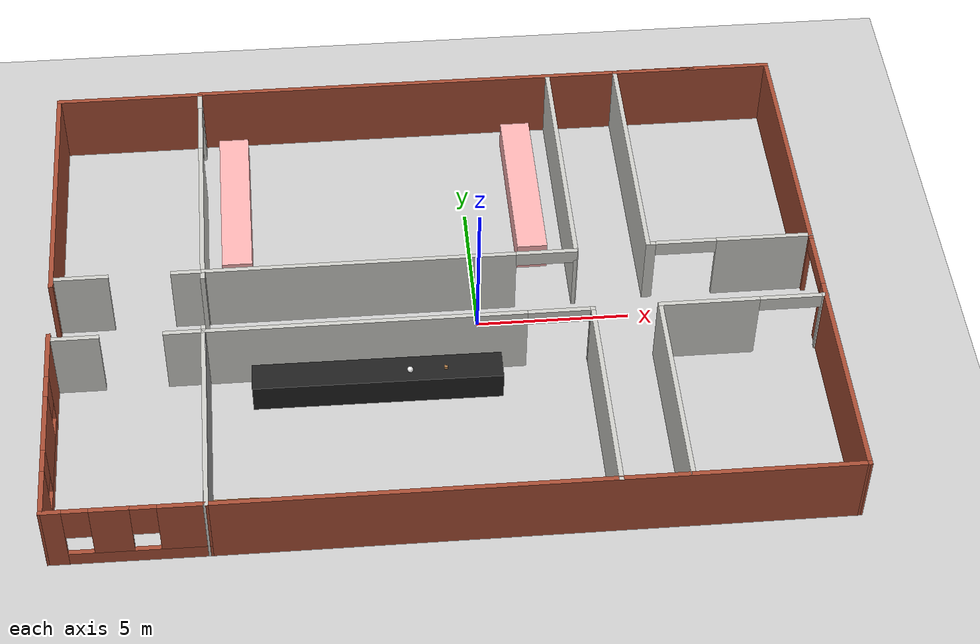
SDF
<sdf version="1.6">
 <world name="default">
  <light name="sun" type="directional">
   <pose>0 0 10 0 -0 0</pose>
   <diffuse>0.8 0.8 0.8 1</diffuse>
   <specular>0.1 0.1 0.1 1</specular>
   <attenuation>
    <range>1000</range>
    <constant>0.9</constant>
    <linear>0.01</linear>
    <quadratic>0.001</quadratic>
   </attenuation>
   <direction>-0.5 0.5 -1</direction>
  </light>
  <model name="ground_plane">
   <static>1</static>
   <link name="link">
    <collision name="collision">
     <geometry><plane><normal>0 0 1</normal><size>100 100</size></plane></geometry>
     <surface><friction><ode><mu>100</mu><mu2>50</mu2></ode></friction></surface>
    </collision>
    <visual name="visual">
     <cast_shadows>0</cast_shadows>
     <geometry><plane><normal>0 0 1</normal><size>100 100</size></plane></geometry>
     <material>
      <script><uri>file://media/materials/scripts/gazebo.material</uri><name>Gazebo/Grey</name></script>
     </material>
    </visual>
   </link>
  </model>
  <gravity>0 0 -9.8</gravity>
  <magnetic_field>6e-06 2.3e-05 -4.2e-05</magnetic_field>
  <atmosphere type="adiabatic"/>
  <physics name="default_physics" default="0" type="ode">
   <max_step_size>0.001</max_step_size>
   <real_time_factor>1</real_time_factor>
   <real_time_update_rate>1000</real_time_update_rate>
  </physics>
  <scene><ambient>0.4 0.4 0.4 1</ambient><background>0.7 0.7 0.7 1</background><shadows>1</shadows></scene>
  <spherical_coordinates>
   <surface_model>EARTH_WGS84</surface_model>
   <latitude_deg>0</latitude_deg>
   <longitude_deg>0</longitude_deg>
   <elevation>0</elevation>
   <heading_deg>0</heading_deg>
  </spherical_coordinates>
  <model name="biofacilty">
   <pose>-1.36381 0.274042 0 0 -0 0</pose>
   <link name="Wall_20">
    <collision name="Wall_20_Collision">
     <geometry><box><size>20 0.15 2.5</size></box></geometry>
     <pose>0 0 1.25 0 -0 0</pose>
    </collision>
    <visual name="Wall_20_Visual">
     <pose>0 0 1.25 0 -0 0</pose>
     <geometry><box><size>20 0.15 2.5</size></box></geometry>
     <material>
      <script><uri>file://media/materials/scripts/gazebo.material</uri><name>Gazebo/Bricks</name></script>
      <ambient>0.996078 0.47451 0.0196078 1</ambient>
     </material>
    </visual>
    <pose>2.42364 -8.95329 0 0 -0 0</pose>
   </link>
   <link name="Wall_22">
    <pose>12.3428 -0.015093 0 0 -0 1.57145</pose>
    <visual name="Wall_22_Visual_0">
     <pose>-5.29439 0 1.25 0 -0 0</pose>
     <geometry><box><size>7.43762 0.15 2.5</size></box></geometry>
     <material>
      <script><uri>file://media/materials/scripts/gazebo.material</uri><name>Gazebo/Bricks</name></script>
      <ambient>0.996078 0.47451 0.0196078 1</ambient>
     </material>
    </visual>
    <collision name="Wall_22_Collision_0">
     <geometry><box><size>7.43762 0.15 2.5</size></box></geometry>
     <pose>-5.29439 0 1.25 0 -0 0</pose>
    </collision>
    <visual name="Wall_22_Visual_1">
     <pose>4.71881 0 1.25 0 -0 0</pose>
     <geometry><box><size>8.58878 0.15 2.5</size></box></geometry>
     <material>
      <script><uri>file://media/materials/scripts/gazebo.material</uri><name>Gazebo/Bricks</name></script>
      <ambient>0.996078 0.47451 0.0196078 1</ambient>
     </material>
    </visual>
    <collision name="Wall_22_Collision_1">
     <geometry><box><size>8.58878 0.15 2.5</size></box></geometry>
     <pose>4.71881 0 1.25 0 -0 0</pose>
    </collision>
    <visual name="Wall_22_Visual_2">
     <pose>-0.575579 0 2.25 0 -0 0</pose>
     <geometry><box><size>2 0.15 0.5</size></box></geometry>
     <material>
      <script><uri>file://media/materials/scripts/gazebo.material</uri><name>Gazebo/Bricks</name></script>
      <ambient>0.996078 0.47451 0.0196078 1</ambient>
     </material>
    </visual>
    <collision name="Wall_22_Collision_2">
     <geometry><box><size>2 0.15 0.5</size></box></geometry>
     <pose>-0.575579 0 2.25 0 -0 0</pose>
    </collision>
   </link>
   <link name="Wall_23">
    <collision name="Wall_23_Collision">
     <geometry><box><size>20 0.15 2.5</size></box></geometry>
     <pose>0 0 1.25 0 -0 0</pose>
    </collision>
    <visual name="Wall_23_Visual">
     <pose>0 0 1.25 0 -0 0</pose>
     <geometry><box><size>20 0.15 2.5</size></box></geometry>
     <material>
      <script><uri>file://media/materials/scripts/gazebo.material</uri><name>Gazebo/Bricks</name></script>
      <ambient>0.996078 0.47451 0.0196078 1</ambient>
     </material>
    </visual>
    <pose>2.41196 8.9537 0 0 -0 3.14159</pose>
   </link>
   <link name="Wall_24">
    <pose>-7.5072 -0.015093 0 0 0 -1.57014</pose>
    <visual name="Wall_24_Visual_0">
     <pose>-8.63481 0 1.25 0 -0 0</pose>
     <geometry><box><size>0.756778 0.15 2.5</size></box></geometry>
     <material>
      <script><uri>file://media/materials/scripts/gazebo.material</uri><name>Gazebo/CeilingTiled</name></script>
      <ambient>1 1 1 1</ambient>
     </material>
    </visual>
    <collision name="Wall_24_Collision_0">
     <geometry><box><size>0.756778 0.15 2.5</size></box></geometry>
     <pose>-8.63481 0 1.25 0 -0 0</pose>
    </collision>
    <visual name="Wall_24_Visual_1">
     <pose>-3.21111 0 1.25 0 -0 0</pose>
     <geometry><box><size>6.09062 0.15 2.5</size></box></geometry>
     <material>
      <script><uri>file://media/materials/scripts/gazebo.material</uri><name>Gazebo/CeilingTiled</name></script>
      <ambient>1 1 1 1</ambient>
     </material>
    </visual>
    <collision name="Wall_24_Collision_1">
     <geometry><box><size>6.09062 0.15 2.5</size></box></geometry>
     <pose>-3.21111 0 1.25 0 -0 0</pose>
    </collision>
    <visual name="Wall_24_Visual_2">
     <pose>5.4237 0 1.25 0 -0 0</pose>
     <geometry><box><size>7.179 0.15 2.5</size></box></geometry>
     <material>
      <script><uri>file://media/materials/scripts/gazebo.material</uri><name>Gazebo/CeilingTiled</name></script>
      <ambient>1 1 1 1</ambient>
     </material>
    </visual>
    <collision name="Wall_24_Collision_2">
     <geometry><box><size>7.179 0.15 2.5</size></box></geometry>
     <pose>5.4237 0 1.25 0 -0 0</pose>
    </collision>
    <visual name="Wall_24_Visual_3">
     <pose>-7.25642 0 2.25 0 -0 0</pose>
     <geometry><box><size>2 0.15 0.5</size></box></geometry>
     <material>
      <script><uri>file://media/materials/scripts/gazebo.material</uri><name>Gazebo/CeilingTiled</name></script>
      <ambient>1 1 1 1</ambient>
     </material>
    </visual>
    <collision name="Wall_24_Collision_3">
     <geometry><box><size>2 0.15 0.5</size></box></geometry>
     <pose>-7.25642 0 2.25 0 -0 0</pose>
    </collision>
   </link>
   <link name="Wall_26">
    <collision name="Wall_26_Collision">
     <geometry><box><size>7 0.15 2.5</size></box></geometry>
     <pose>0 0 1.25 0 -0 0</pose>
    </collision>
    <visual name="Wall_26_Visual">
     <pose>0 0 1.25 0 -0 0</pose>
     <geometry><box><size>7 0.15 2.5</size></box></geometry>
     <material>
      <script><uri>file://media/materials/scripts/gazebo.material</uri><name>Gazebo/Grey</name></script>
      <ambient>1 1 1 1</ambient>
     </material>
    </visual>
    <pose>-7.50136 -5.52829 0 0 -0 1.5708</pose>
   </link>
   <link name="Wall_27">
    <pose>-1.32636 -2.10329 0 0 -0 0</pose>
    <visual name="Wall_27_Visual_0">
     <pose>-1.07933 0 1.25 0 -0 0</pose>
     <geometry><box><size>10.3413 0.15 2.5</size></box></geometry>
     <material>
      <script><uri>file://media/materials/scripts/gazebo.material</uri><name>Gazebo/CeilingTiled</name></script>
      <ambient>1 1 1 1</ambient>
     </material>
    </visual>
    <collision name="Wall_27_Collision_0">
     <geometry><box><size>10.3413 0.15 2.5</size></box></geometry>
     <pose>-1.07933 0 1.25 0 -0 0</pose>
    </collision>
    <visual name="Wall_27_Visual_1">
     <pose>6.17067 0 1.25 0 -0 0</pose>
     <geometry><box><size>0.158662 0.15 2.5</size></box></geometry>
     <material>
      <script><uri>file://media/materials/scripts/gazebo.material</uri><name>Gazebo/CeilingTiled</name></script>
      <ambient>1 1 1 1</ambient>
     </material>
    </visual>
    <collision name="Wall_27_Collision_1">
     <geometry><box><size>0.158662 0.15 2.5</size></box></geometry>
     <pose>6.17067 0 1.25 0 -0 0</pose>
    </collision>
    <visual name="Wall_27_Visual_2">
     <pose>5.09134 0 2.25 0 -0 0</pose>
     <geometry><box><size>2 0.15 0.5</size></box></geometry>
     <material>
      <script><uri>file://media/materials/scripts/gazebo.material</uri><name>Gazebo/CeilingTiled</name></script>
      <ambient>1 1 1 1</ambient>
     </material>
    </visual>
    <collision name="Wall_27_Collision_2">
     <geometry><box><size>2 0.15 0.5</size></box></geometry>
     <pose>5.09134 0 2.25 0 -0 0</pose>
    </collision>
   </link>
   <link name="Wall_28">
    <collision name="Wall_28_Collision">
     <geometry><box><size>7 0.15 2.5</size></box></geometry>
     <pose>0 0 1.25 0 -0 0</pose>
    </collision>
    <visual name="Wall_28_Visual">
     <pose>0 0 1.25 0 -0 0</pose>
     <geometry><box><size>7 0.15 2.5</size></box></geometry>
     <material>
      <script><uri>file://media/materials/scripts/gazebo.material</uri><name>Gazebo/CeilingTiled</name></script>
      <ambient>1 1 1 1</ambient>
     </material>
    </visual>
    <pose>4.84864 -5.52829 0 0 0 -1.5708</pose>
   </link>
   <link name="Wall_30">
    <collision name="Wall_30_Collision">
     <geometry><box><size>7 0.15 2.5</size></box></geometry>
     <pose>0 0 1.25 0 -0 0</pose>
    </collision>
    <visual name="Wall_30_Visual">
     <pose>0 0 1.25 0 -0 0</pose>
     <geometry><box><size>7 0.15 2.5</size></box></geometry>
     <material>
      <script><uri>file://media/materials/scripts/gazebo.material</uri><name>Gazebo/CeilingTiled</name></script>
      <ambient>1 1 1 1</ambient>
     </material>
    </visual>
    <pose>7.01344 -5.50786 0 0 -0 1.5708</pose>
   </link>
   <link name="Wall_31">
    <pose>9.68844 -2.08286 0 0 -0 0</pose>
    <visual name="Wall_31_Visual_0">
     <pose>-1.11288 0 1.25 0 -0 0</pose>
     <geometry><box><size>3.27424 0.15 2.5</size></box></geometry>
     <material>
      <script><uri>file://media/materials/scripts/gazebo.material</uri><name>Gazebo/CeilingTiled</name></script>
      <ambient>1 1 1 1</ambient>
     </material>
    </visual>
    <collision name="Wall_31_Collision_0">
     <geometry><box><size>3.27424 0.15 2.5</size></box></geometry>
     <pose>-1.11288 0 1.25 0 -0 0</pose>
    </collision>
    <visual name="Wall_31_Visual_1">
     <pose>2.63712 0 1.25 0 -0 0</pose>
     <geometry><box><size>0.225759 0.15 2.5</size></box></geometry>
     <material>
      <script><uri>file://media/materials/scripts/gazebo.material</uri><name>Gazebo/CeilingTiled</name></script>
      <ambient>1 1 1 1</ambient>
     </material>
    </visual>
    <collision name="Wall_31_Collision_1">
     <geometry><box><size>0.225759 0.15 2.5</size></box></geometry>
     <pose>2.63712 0 1.25 0 -0 0</pose>
    </collision>
    <visual name="Wall_31_Visual_2">
     <pose>1.52424 0 2.25 0 -0 0</pose>
     <geometry><box><size>2 0.15 0.5</size></box></geometry>
     <material>
      <script><uri>file://media/materials/scripts/gazebo.material</uri><name>Gazebo/CeilingTiled</name></script>
      <ambient>1 1 1 1</ambient>
     </material>
    </visual>
    <collision name="Wall_31_Collision_2">
     <geometry><box><size>2 0.15 0.5</size></box></geometry>
     <pose>1.52424 0 2.25 0 -0 0</pose>
    </collision>
   </link>
   <link name="Wall_44">
    <pose>-1.43833 0.481519 0 0 -0 0</pose>
    <visual name="Wall_44_Visual_0">
     <pose>-1.01405 0 1.25 0 -0 0</pose>
     <geometry><box><size>10.2219 0.15 2.5</size></box></geometry>
     <material>
      <script><uri>file://media/materials/scripts/gazebo.material</uri><name>Gazebo/CeilingTiled</name></script>
      <ambient>1 1 1 1</ambient>
     </material>
    </visual>
    <collision name="Wall_44_Collision_0">
     <geometry><box><size>10.2219 0.15 2.5</size></box></geometry>
     <pose>-1.01405 0 1.25 0 -0 0</pose>
    </collision>
    <visual name="Wall_44_Visual_1">
     <pose>6.11095 0 1.25 0 -0 0</pose>
     <geometry><box><size>0.028092 0.15 2.5</size></box></geometry>
     <material>
      <script><uri>file://media/materials/scripts/gazebo.material</uri><name>Gazebo/CeilingTiled</name></script>
      <ambient>1 1 1 1</ambient>
     </material>
    </visual>
    <collision name="Wall_44_Collision_1">
     <geometry><box><size>0.028092 0.15 2.5</size></box></geometry>
     <pose>6.11095 0 1.25 0 -0 0</pose>
    </collision>
    <visual name="Wall_44_Visual_2">
     <pose>5.09691 0 2.25 0 -0 0</pose>
     <geometry><box><size>2 0.15 0.5</size></box></geometry>
     <material>
      <script><uri>file://media/materials/scripts/gazebo.material</uri><name>Gazebo/CeilingTiled</name></script>
      <ambient>1 1 1 1</ambient>
     </material>
    </visual>
    <collision name="Wall_44_Collision_2">
     <geometry><box><size>2 0.15 0.5</size></box></geometry>
     <pose>5.09691 0 2.25 0 -0 0</pose>
    </collision>
   </link>
   <link name="Wall_45">
    <collision name="Wall_45_Collision">
     <geometry><box><size>8.5 0.15 2.5</size></box></geometry>
     <pose>0 0 1.25 0 -0 0</pose>
    </collision>
    <visual name="Wall_45_Visual">
     <pose>0 0 1.25 0 -0 0</pose>
     <geometry><box><size>8.5 0.15 2.5</size></box></geometry>
     <material>
      <script><uri>file://media/materials/scripts/gazebo.material</uri><name>Gazebo/CeilingTiled</name></script>
      <ambient>1 1 1 1</ambient>
     </material>
    </visual>
    <pose>4.61167 4.65652 0 0 -0 1.5708</pose>
   </link>
   <link name="Wall_47">
    <collision name="Wall_47_Collision">
     <geometry><box><size>5.5 0.15 2.5</size></box></geometry>
     <pose>0 0 1.25 0 -0 0</pose>
    </collision>
    <visual name="Wall_47_Visual">
     <pose>0 0 1.25 0 -0 0</pose>
     <geometry><box><size>5.5 0.15 2.5</size></box></geometry>
     <material>
      <script><uri>file://media/materials/scripts/gazebo.material</uri><name>Gazebo/Bricks</name></script>
      <ambient>0.996078 0.47451 0.0196078 1</ambient>
     </material>
    </visual>
    <pose>9.66196 8.9537 0 0 -0 3.14159</pose>
   </link>
   <link name="Wall_48">
    <collision name="Wall_48_Collision">
     <geometry><box><size>8.5 0.15 2.5</size></box></geometry>
     <pose>0 0 1.25 0 -0 0</pose>
    </collision>
    <visual name="Wall_48_Visual">
     <pose>0 0 1.25 0 -0 0</pose>
     <geometry><box><size>8.5 0.15 2.5</size></box></geometry>
     <material>
      <script><uri>file://media/materials/scripts/gazebo.material</uri><name>Gazebo/CeilingTiled</name></script>
      <ambient>1 1 1 1</ambient>
     </material>
    </visual>
    <pose>6.98696 4.7787 0 0 0 -1.5708</pose>
   </link>
   <link name="Wall_49">
    <pose>9.66196 0.603697 0 0 -0 0</pose>
    <visual name="Wall_49_Visual_0">
     <pose>-2.58581 0 1.25 0 -0 0</pose>
     <geometry><box><size>0.328391 0.15 2.5</size></box></geometry>
     <material>
      <script><uri>file://media/materials/scripts/gazebo.material</uri><name>Gazebo/CeilingTiled</name></script>
      <ambient>1 1 1 1</ambient>
     </material>
    </visual>
    <collision name="Wall_49_Collision_0">
     <geometry><box><size>0.328391 0.15 2.5</size></box></geometry>
     <pose>-2.58581 0 1.25 0 -0 0</pose>
    </collision>
    <visual name="Wall_49_Visual_1">
     <pose>1.1642 0 1.25 0 -0 0</pose>
     <geometry><box><size>3.17161 0.15 2.5</size></box></geometry>
     <material>
      <script><uri>file://media/materials/scripts/gazebo.material</uri><name>Gazebo/CeilingTiled</name></script>
      <ambient>1 1 1 1</ambient>
     </material>
    </visual>
    <collision name="Wall_49_Collision_1">
     <geometry><box><size>3.17161 0.15 2.5</size></box></geometry>
     <pose>1.1642 0 1.25 0 -0 0</pose>
    </collision>
    <visual name="Wall_49_Visual_2">
     <pose>-1.42161 0 2.25 0 -0 0</pose>
     <geometry><box><size>2 0.15 0.5</size></box></geometry>
     <material>
      <script><uri>file://media/materials/scripts/gazebo.material</uri><name>Gazebo/CeilingTiled</name></script>
      <ambient>1 1 1 1</ambient>
     </material>
    </visual>
    <collision name="Wall_49_Collision_2">
     <geometry><box><size>2 0.15 0.5</size></box></geometry>
     <pose>-1.42161 0 2.25 0 -0 0</pose>
    </collision>
   </link>
   <link name="Wall_53">
    <collision name="Wall_53_Collision">
     <geometry><box><size>5 0.15 2.5</size></box></geometry>
     <pose>0 0 1.25 0 -0 0</pose>
    </collision>
    <visual name="Wall_53_Visual">
     <pose>0 0 1.25 0 -0 0</pose>
     <geometry><box><size>5 0.15 2.5</size></box></geometry>
     <material>
      <script><uri>file://media/materials/scripts/gazebo.material</uri><name>Gazebo/Bricks</name></script>
      <ambient>0.996078 0.47451 0.0196078 1</ambient>
     </material>
    </visual>
    <pose>-9.93804 8.92311 0 0 -0 3.14159</pose>
   </link>
   <link name="Wall_54">
    <pose>-12.363 -0.001894 0 0 0 -1.5708</pose>
    <visual name="Wall_54_Visual_0">
     <pose>-4.57252 0 1.25 0 -0 0</pose>
     <geometry><box><size>8.85495 0.15 2.5</size></box></geometry>
     <material>
      <script><uri>file://media/materials/scripts/gazebo.material</uri><name>Gazebo/Bricks</name></script>
      <ambient>0.996078 0.47451 0.0196078 1</ambient>
     </material>
    </visual>
    <collision name="Wall_54_Collision_0">
     <geometry><box><size>8.85495 0.15 2.5</size></box></geometry>
     <pose>-4.57252 0 1.25 0 -0 0</pose>
    </collision>
    <visual name="Wall_54_Visual_1">
     <pose>2.74668 0 1.25 0 -0 0</pose>
     <geometry><box><size>1.78345 0.15 2.5</size></box></geometry>
     <material>
      <script><uri>file://media/materials/scripts/gazebo.material</uri><name>Gazebo/Bricks</name></script>
      <ambient>0.996078 0.47451 0.0196078 1</ambient>
     </material>
    </visual>
    <collision name="Wall_54_Collision_1">
     <geometry><box><size>1.78345 0.15 2.5</size></box></geometry>
     <pose>2.74668 0 1.25 0 -0 0</pose>
    </collision>
    <visual name="Wall_54_Visual_2">
     <pose>6.3192 0 0.25 0 -0 0</pose>
     <geometry><box><size>5.3616 0.15 0.5</size></box></geometry>
     <material>
      <script><uri>file://media/materials/scripts/gazebo.material</uri><name>Gazebo/Bricks</name></script>
      <ambient>0.996078 0.47451 0.0196078 1</ambient>
     </material>
    </visual>
    <collision name="Wall_54_Collision_2">
     <geometry><box><size>5.3616 0.15 0.5</size></box></geometry>
     <pose>6.3192 0 0.25 0 -0 0</pose>
    </collision>
    <visual name="Wall_54_Visual_3">
     <pose>5.49832 0 1.5 0 -0 0</pose>
     <geometry><box><size>2.11984 0.15 2</size></box></geometry>
     <material>
      <script><uri>file://media/materials/scripts/gazebo.material</uri><name>Gazebo/Bricks</name></script>
      <ambient>0.996078 0.47451 0.0196078 1</ambient>
     </material>
    </visual>
    <collision name="Wall_54_Collision_3">
     <geometry><box><size>2.11984 0.15 2</size></box></geometry>
     <pose>5.49832 0 1.5 0 -0 0</pose>
    </collision>
    <visual name="Wall_54_Visual_4">
     <pose>8.17912 0 1.5 0 -0 0</pose>
     <geometry><box><size>1.64176 0.15 2</size></box></geometry>
     <material>
      <script><uri>file://media/materials/scripts/gazebo.material</uri><name>Gazebo/Bricks</name></script>
      <ambient>0.996078 0.47451 0.0196078 1</ambient>
     </material>
    </visual>
    <collision name="Wall_54_Collision_4">
     <geometry><box><size>1.64176 0.15 2</size></box></geometry>
     <pose>8.17912 0 1.5 0 -0 0</pose>
    </collision>
    <visual name="Wall_54_Visual_5">
     <pose>4.0384 0 1.9 0 -0 0</pose>
     <geometry><box><size>0.8 0.15 1.2</size></box></geometry>
     <material>
      <script><uri>file://media/materials/scripts/gazebo.material</uri><name>Gazebo/Bricks</name></script>
      <ambient>0.996078 0.47451 0.0196078 1</ambient>
     </material>
    </visual>
    <collision name="Wall_54_Collision_5">
     <geometry><box><size>0.8 0.15 1.2</size></box></geometry>
     <pose>4.0384 0 1.9 0 -0 0</pose>
    </collision>
    <visual name="Wall_54_Visual_6">
     <pose>6.95824 0 1.9 0 -0 0</pose>
     <geometry><box><size>0.8 0.15 1.2</size></box></geometry>
     <material>
      <script><uri>file://media/materials/scripts/gazebo.material</uri><name>Gazebo/Bricks</name></script>
      <ambient>0.996078 0.47451 0.0196078 1</ambient>
     </material>
    </visual>
    <collision name="Wall_54_Collision_6">
     <geometry><box><size>0.8 0.15 1.2</size></box></geometry>
     <pose>6.95824 0 1.9 0 -0 0</pose>
    </collision>
   </link>
   <link name="Wall_55">
    <pose>-9.9322 -8.94009 0 0 0 -0.00543</pose>
    <visual name="Wall_55_Visual_0">
     <pose>-2.16275 0 1.25 0 -0 0</pose>
     <geometry><box><size>0.686254 0.15 2.5</size></box></geometry>
     <material>
      <script><uri>file://media/materials/scripts/gazebo.material</uri><name>Gazebo/Bricks</name></script>
      <ambient>0.996078 0.47451 0.0196078 1</ambient>
     </material>
    </visual>
    <collision name="Wall_55_Collision_0">
     <geometry><box><size>0.686254 0.15 2.5</size></box></geometry>
     <pose>-2.16275 0 1.25 0 -0 0</pose>
    </collision>
    <visual name="Wall_55_Visual_1">
     <pose>0.343127 0 0.25 0 -0 0</pose>
     <geometry><box><size>4.32549 0.15 0.5</size></box></geometry>
     <material>
      <script><uri>file://media/materials/scripts/gazebo.material</uri><name>Gazebo/Bricks</name></script>
      <ambient>0.996078 0.47451 0.0196078 1</ambient>
     </material>
    </visual>
    <collision name="Wall_55_Collision_1">
     <geometry><box><size>4.32549 0.15 0.5</size></box></geometry>
     <pose>0.343127 0 0.25 0 -0 0</pose>
    </collision>
    <visual name="Wall_55_Visual_2">
     <pose>-0.416561 0 1.5 0 -0 0</pose>
     <geometry><box><size>1.20612 0.15 2</size></box></geometry>
     <material>
      <script><uri>file://media/materials/scripts/gazebo.material</uri><name>Gazebo/Bricks</name></script>
      <ambient>0.996078 0.47451 0.0196078 1</ambient>
     </material>
    </visual>
    <collision name="Wall_55_Collision_2">
     <geometry><box><size>1.20612 0.15 2</size></box></geometry>
     <pose>-0.416561 0 1.5 0 -0 0</pose>
    </collision>
    <visual name="Wall_55_Visual_3">
     <pose>1.74619 0 1.5 0 -0 0</pose>
     <geometry><box><size>1.51938 0.15 2</size></box></geometry>
     <material>
      <script><uri>file://media/materials/scripts/gazebo.material</uri><name>Gazebo/Bricks</name></script>
      <ambient>0.996078 0.47451 0.0196078 1</ambient>
     </material>
    </visual>
    <collision name="Wall_55_Collision_3">
     <geometry><box><size>1.51938 0.15 2</size></box></geometry>
     <pose>1.74619 0 1.5 0 -0 0</pose>
    </collision>
    <visual name="Wall_55_Visual_4">
     <pose>-1.41962 0 1.9 0 -0 0</pose>
     <geometry><box><size>0.8 0.15 1.2</size></box></geometry>
     <material>
      <script><uri>file://media/materials/scripts/gazebo.material</uri><name>Gazebo/Bricks</name></script>
      <ambient>0.996078 0.47451 0.0196078 1</ambient>
     </material>
    </visual>
    <collision name="Wall_55_Collision_4">
     <geometry><box><size>0.8 0.15 1.2</size></box></geometry>
     <pose>-1.41962 0 1.9 0 -0 0</pose>
    </collision>
    <visual name="Wall_55_Visual_5">
     <pose>0.586496 0 1.9 0 -0 0</pose>
     <geometry><box><size>0.8 0.15 1.2</size></box></geometry>
     <material>
      <script><uri>file://media/materials/scripts/gazebo.material</uri><name>Gazebo/Bricks</name></script>
      <ambient>0.996078 0.47451 0.0196078 1</ambient>
     </material>
    </visual>
    <collision name="Wall_55_Collision_5">
     <geometry><box><size>0.8 0.15 1.2</size></box></geometry>
     <pose>0.586496 0 1.9 0 -0 0</pose>
    </collision>
   </link>
   <link name="Wall_57">
    <pose>-9.91333 0.481519 0 0 -0 3.14159</pose>
    <visual name="Wall_57_Visual_0">
     <pose>-1.93911 0 1.25 0 -0 0</pose>
     <geometry><box><size>1.12179 0.15 2.5</size></box></geometry>
     <material>
      <script><uri>file://media/materials/scripts/gazebo.material</uri><name>Gazebo/CeilingTiled</name></script>
      <ambient>1 1 1 1</ambient>
     </material>
    </visual>
    <collision name="Wall_57_Collision_0">
     <geometry><box><size>1.12179 0.15 2.5</size></box></geometry>
     <pose>-1.93911 0 1.25 0 -0 0</pose>
    </collision>
    <visual name="Wall_57_Visual_1">
     <pose>1.56089 0 1.25 0 -0 0</pose>
     <geometry><box><size>1.87821 0.15 2.5</size></box></geometry>
     <material>
      <script><uri>file://media/materials/scripts/gazebo.material</uri><name>Gazebo/CeilingTiled</name></script>
      <ambient>1 1 1 1</ambient>
     </material>
    </visual>
    <collision name="Wall_57_Collision_1">
     <geometry><box><size>1.87821 0.15 2.5</size></box></geometry>
     <pose>1.56089 0 1.25 0 -0 0</pose>
    </collision>
   </link>
   <link name="Wall_59">
    <pose>-9.92636 -2.10329 0 0 -0 3.14159</pose>
    <visual name="Wall_59_Visual_0">
     <pose>-1.82555 0 1.25 0 -0 0</pose>
     <geometry><box><size>1.3489 0.15 2.5</size></box></geometry>
     <material>
      <script><uri>file://media/materials/scripts/gazebo.material</uri><name>Gazebo/CeilingTiled</name></script>
      <ambient>1 1 1 1</ambient>
     </material>
    </visual>
    <collision name="Wall_59_Collision_0">
     <geometry><box><size>1.3489 0.15 2.5</size></box></geometry>
     <pose>-1.82555 0 1.25 0 -0 0</pose>
    </collision>
    <visual name="Wall_59_Visual_1">
     <pose>1.67445 0 1.25 0 -0 0</pose>
     <geometry><box><size>1.6511 0.15 2.5</size></box></geometry>
     <material>
      <script><uri>file://media/materials/scripts/gazebo.material</uri><name>Gazebo/CeilingTiled</name></script>
      <ambient>1 1 1 1</ambient>
     </material>
    </visual>
    <collision name="Wall_59_Collision_1">
     <geometry><box><size>1.6511 0.15 2.5</size></box></geometry>
     <pose>1.67445 0 1.25 0 -0 0</pose>
    </collision>
   </link>
   <static>1</static>
  </model>
  <model name="table">
   <static>0</static>
   <link name="link">
    <collision name="surface">
     <pose>0 0 1 0 -0 0</pose>
     <geometry><box><size>1.5 0.8 0.03</size></box></geometry>
     <surface><friction><ode><mu>0.6</mu><mu2>0.6</mu2></ode></friction></surface>
    </collision>
    <visual name="visual1">
     <pose>0 0 1 0 -0 0</pose>
     <geometry><box><size>1.4 0.8 0.04</size></box></geometry>
     <material>
      <script><uri>file://media/materials/scripts/gazebo.material</uri><name>Gazebo/Wood</name></script>
     </material>
    </visual>
    <collision name="front_left_leg">
     <pose>0.68 0.38 0.5 0 -0 0</pose>
     <geometry><cylinder><radius>0.02</radius><length>1</length></cylinder></geometry>
    </collision>
    <visual name="front_left_leg">
     <pose>0.68 0.38 0.5 0 -0 0</pose>
     <geometry><cylinder><radius>0.02</radius><length>1</length></cylinder></geometry>
     <material>
      <script><uri>file://media/materials/scripts/gazebo.material</uri><name>Gazebo/Grey</name></script>
     </material>
    </visual>
    <collision name="front_right_leg">
     <pose>0.68 -0.38 0.5 0 -0 0</pose>
     <geometry><cylinder><radius>0.02</radius><length>1</length></cylinder></geometry>
    </collision>
    <visual name="front_right_leg">
     <pose>0.68 -0.38 0.5 0 -0 0</pose>
     <geometry><cylinder><radius>0.02</radius><length>1</length></cylinder></geometry>
     <material>
      <script><uri>file://media/materials/scripts/gazebo.material</uri><name>Gazebo/Grey</name></script>
     </material>
    </visual>
    <collision name="back_right_leg">
     <pose>-0.68 -0.38 0.5 0 -0 0</pose>
     <geometry><cylinder><radius>0.02</radius><length>1</length></cylinder></geometry>
    </collision>
    <visual name="back_right_leg">
     <pose>-0.68 -0.38 0.5 0 -0 0</pose>
     <geometry><cylinder><radius>0.02</radius><length>1</length></cylinder></geometry>
     <material>
      <script><uri>file://media/materials/scripts/gazebo.material</uri><name>Gazebo/Grey</name></script>
     </material>
    </visual>
    <collision name="back_left_leg">
     <pose>-0.68 0.38 0.5 0 -0 0</pose>
     <geometry><cylinder><radius>0.02</radius><length>1</length></cylinder></geometry>
    </collision>
    <visual name="back_left_leg">
     <pose>-0.68 0.38 0.5 0 -0 0</pose>
     <geometry><cylinder><radius>0.02</radius><length>1</length></cylinder></geometry>
     <material>
      <script><uri>file://media/materials/scripts/gazebo.material</uri><name>Gazebo/Grey</name></script>
     </material>
    </visual>
    <inertial>
     <inertia><ixx>1</ixx><ixy>0</ixy><ixz>0</ixz><iyy>1</iyy><iyz>0</iyz><izz>1</izz></inertia>
     <mass>1</mass>
    </inertial>
   </link>
   <pose>-8.04309 -7.83386 0.005125 -0.005828 0.004071 -0.002791</pose>
  </model>
  <model name="unit_box_0_2_1">
   <link name="link">
    <pose>0.16076 -1.5674 0 0 -0 0</pose>
    <inertial>
     <mass>1</mass>
     <inertia>
      <ixx>0.166667</ixx>
      <ixy>0</ixy>
      <ixz>0</ixz>
      <iyy>0.166667</iyy>
      <iyz>0</iyz>
      <izz>0.166667</izz>
     </inertia>
    </inertial>
    <visual name="visual">
     <geometry><box><size>1 6 1</size></box></geometry>
     <material>
      <script><name>Gazebo/Grey</name><uri>file://media/materials/scripts/gazebo.material</uri></script>
      <ambient>1 0.3 0.3 1</ambient>
      <diffuse>1 0.7 0.7 1</diffuse>
      <specular>0.01 0.01 0.01 1</specular>
      <emissive>0 0 0 1</emissive>
      <shader type="vertex"><normal_map>__default__</normal_map></shader>
     </material>
    </visual>
    <collision name="collision">
     <geometry><box><size>1 6 1</size></box></geometry>
     <surface>
      <friction>
       <ode><mu>1</mu><mu2>1</mu2><fdir1>0 0 0</fdir1><slip1>0</slip1><slip2>0</slip2></ode>
       <torsional>
        <coefficient>1</coefficient>
        <patch_radius>0</patch_radius>
        <surface_radius>0</surface_radius>
        <use_patch_radius>1</use_patch_radius>
        <ode><slip>0</slip></ode>
       </torsional>
      </friction>
      <bounce><restitution_coefficient>0</restitution_coefficient><threshold>1e+06</threshold></bounce>
      <contact>
       <collide_without_contact>0</collide_without_contact>
       <collide_without_contact_bitmask>1</collide_without_contact_bitmask>
       <collide_bitmask>1</collide_bitmask>
       <ode>
        <soft_cfm>0</soft_cfm>
        <soft_erp>0.2</soft_erp>
        <kp>1e+13</kp>
        <kd>1</kd>
        <max_vel>0.01</max_vel>
        <min_depth>0</min_depth>
       </ode>
       <bullet>
        <split_impulse>1</split_impulse>
        <split_impulse_penetration_threshold>-0.01</split_impulse_penetration_threshold>
        <soft_cfm>0</soft_cfm>
        <soft_erp>0.2</soft_erp>
        <kp>1e+13</kp>
        <kd>1</kd>
       </bullet>
      </contact>
     </surface>
    </collision>
   </link>
   <static>0</static>
   <pose>1.89363 7.04851 0.497699 0.001608 -0 0.000108</pose>
  </model>
  <model name="unit_box_0_2_2">
   <link name="link">
    <pose>0.16076 -1.5674 0 0 -0 0</pose>
    <inertial>
     <mass>1</mass>
     <inertia>
      <ixx>0.166667</ixx>
      <ixy>0</ixy>
      <ixz>0</ixz>
      <iyy>0.166667</iyy>
      <iyz>0</iyz>
      <izz>0.166667</izz>
     </inertia>
    </inertial>
    <visual name="visual">
     <geometry><box><size>1 6 1</size></box></geometry>
     <material>
      <script><name>Gazebo/Grey</name><uri>file://media/materials/scripts/gazebo.material</uri></script>
      <ambient>1 0.3 0.3 1</ambient>
      <diffuse>1 0.7 0.7 1</diffuse>
      <specular>0.01 0.01 0.01 1</specular>
      <emissive>0 0 0 1</emissive>
      <shader type="vertex"><normal_map>__default__</normal_map></shader>
     </material>
    </visual>
    <collision name="collision">
     <geometry><box><size>1 6 1</size></box></geometry>
     <surface>
      <friction>
       <ode><mu>1</mu><mu2>1</mu2><fdir1>0 0 0</fdir1><slip1>0</slip1><slip2>0</slip2></ode>
       <torsional>
        <coefficient>1</coefficient>
        <patch_radius>0</patch_radius>
        <surface_radius>0</surface_radius>
        <use_patch_radius>1</use_patch_radius>
        <ode><slip>0</slip></ode>
       </torsional>
      </friction>
      <bounce><restitution_coefficient>0</restitution_coefficient><threshold>1e+06</threshold></bounce>
      <contact>
       <collide_without_contact>0</collide_without_contact>
       <collide_without_contact_bitmask>1</collide_without_contact_bitmask>
       <collide_bitmask>1</collide_bitmask>
       <ode>
        <soft_cfm>0</soft_cfm>
        <soft_erp>0.2</soft_erp>
        <kp>1e+13</kp>
        <kd>1</kd>
        <max_vel>0.01</max_vel>
        <min_depth>0</min_depth>
       </ode>
       <bullet>
        <split_impulse>1</split_impulse>
        <split_impulse_penetration_threshold>-0.01</split_impulse_penetration_threshold>
        <soft_cfm>0</soft_cfm>
        <soft_erp>0.2</soft_erp>
        <kp>1e+13</kp>
        <kd>1</kd>
       </bullet>
      </contact>
     </surface>
    </collision>
   </link>
   <static>0</static>
   <pose>-7.97076 6.96882 0.5 0 -1e-06 -4e-05</pose>
  </model>
  <model name="wood_cube_10cm">
   <link name="link">
    <pose>0 0 0.05 0 -0 0</pose>
    <inertial>
     <mass>0.5167</mass>
     <inertia>
      <ixx>0.000861167</ixx>
      <ixy>0</ixy>
      <ixz>0</ixz>
      <iyy>0.000861167</iyy>
      <iyz>0</iyz>
      <izz>0.000861167</izz>
     </inertia>
    </inertial>
    <collision name="collision">
     <geometry><box><size>0.1 0.1 0.1</size></box></geometry>
     <surface>
      <contact>
       <poissons_ratio>0.347</poissons_ratio>
       <elastic_modulus>8.8e+09</elastic_modulus>
       <ode><kp>100000</kp><kd>100</kd><max_vel>100</max_vel><min_depth>0.001</min_depth></ode>
      </contact>
      <friction>
       <torsional>
        <coefficient>1</coefficient>
        <use_patch_radius>0</use_patch_radius>
        <surface_radius>0.01</surface_radius>
       </torsional>
      </friction>
     </surface>
    </collision>
    <visual name="visual">
     <geometry><box><size>0.1 0.1 0.1</size></box></geometry>
     <material>
      <script><uri>file://media/materials/scripts/gazebo.material</uri><name>Gazebo/Wood</name></script>
     </material>
    </visual>
   </link>
   <pose>-1.25746 -2.68386 0.999737 0.000844 0.000132 -0.204701</pose>
  </model>
  <model name="unit_box_0_5_0">
   <link name="link">
    <inertial>
     <mass>1</mass>
     <inertia>
      <ixx>0.166667</ixx>
      <ixy>0</ixy>
      <ixz>0</ixz>
      <iyy>0.166667</iyy>
      <iyz>0</iyz>
      <izz>0.166667</izz>
     </inertia>
    </inertial>
    <visual name="visual">
     <geometry><box><size>8 1 1</size></box></geometry>
     <material>
      <script><name>Gazebo/Black</name><uri>file://media/materials/scripts/gazebo.material</uri></script>
      <ambient>0.3 1 0.3 1</ambient>
      <diffuse>0.7 0.7 0.7 1</diffuse>
      <specular>0.01 0.01 0.01 1</specular>
      <emissive>0 0 0 1</emissive>
      <shader type="pixel"><normal_map>__default__</normal_map></shader>
     </material>
     <pose>4 0 0 0 -0 0</pose>
    </visual>
    <collision name="collision">
     <pose>4 0 0 0 -0 0</pose>
     <geometry><box><size>8 1 1</size></box></geometry>
     <surface>
      <friction>
       <ode><mu>1</mu><mu2>1</mu2><fdir1>0 0 0</fdir1><slip1>0</slip1><slip2>0</slip2></ode>
       <torsional>
        <coefficient>1</coefficient>
        <patch_radius>0</patch_radius>
        <surface_radius>0</surface_radius>
        <use_patch_radius>1</use_patch_radius>
        <ode><slip>0</slip></ode>
       </torsional>
      </friction>
      <bounce><restitution_coefficient>0</restitution_coefficient><threshold>1e+06</threshold></bounce>
      <contact>
       <collide_without_contact>0</collide_without_contact>
       <collide_without_contact_bitmask>1</collide_without_contact_bitmask>
       <collide_bitmask>1</collide_bitmask>
       <ode>
        <soft_cfm>0</soft_cfm>
        <soft_erp>0.2</soft_erp>
        <kp>1e+13</kp>
        <kd>1</kd>
        <max_vel>0.01</max_vel>
        <min_depth>0</min_depth>
       </ode>
       <bullet>
        <split_impulse>1</split_impulse>
        <split_impulse_penetration_threshold>-0.01</split_impulse_penetration_threshold>
        <soft_cfm>0</soft_cfm>
        <soft_erp>0.2</soft_erp>
        <kp>1e+13</kp>
        <kd>1</kd>
       </bullet>
      </contact>
     </surface>
    </collision>
   </link>
   <static>0</static>
   <pose>-7.44384 -2.58336 0.500026 6e-05 3e-05 -0.006169</pose>
  </model>
  <model name="my_ball">
   <link name="link_0">
    <inertial>
     <mass>1</mass>
     <inertia><ixx>0.1</ixx><ixy>0</ixy><ixz>0</ixz><iyy>0.1</iyy><iyz>0</iyz><izz>0.1</izz></inertia>
    </inertial>
    <visual name="visual">
     <geometry><sphere><radius>0.1</radius></sphere></geometry>
     <material>
      <lighting>1</lighting>
      <script><uri>file://media/materials/scripts/gazebo.material</uri><name>Gazebo/White</name></script>
      <ambient>1 1 1 1</ambient>
      <diffuse>1 1 1 1</diffuse>
      <specular>1 1 1 1</specular>
      <emissive>1 1 1 1</emissive>
      <shader type="vertex"><normal_map>__default__</normal_map></shader>
     </material>
    </visual>
    <collision name="collision">
     <geometry><sphere><radius>0.1</radius></sphere></geometry>
     <surface>
      <friction>
       <ode><mu>1</mu><mu2>1</mu2><fdir1>0 0 0</fdir1><slip1>0</slip1><slip2>0</slip2></ode>
       <torsional>
        <coefficient>1</coefficient>
        <patch_radius>0</patch_radius>
        <surface_radius>0</surface_radius>
        <use_patch_radius>1</use_patch_radius>
        <ode><slip>0</slip></ode>
       </torsional>
      </friction>
      <bounce><restitution_coefficient>0</restitution_coefficient><threshold>1e+06</threshold></bounce>
      <contact>
       <collide_without_contact>0</collide_without_contact>
       <collide_without_contact_bitmask>1</collide_without_contact_bitmask>
       <collide_bitmask>1</collide_bitmask>
       <ode>
        <soft_cfm>0</soft_cfm>
        <soft_erp>0.2</soft_erp>
        <kp>1e+13</kp>
        <kd>1</kd>
        <max_vel>0.01</max_vel>
        <min_depth>0</min_depth>
       </ode>
       <bullet>
        <split_impulse>1</split_impulse>
        <split_impulse_penetration_threshold>-0.01</split_impulse_penetration_threshold>
        <soft_cfm>0</soft_cfm>
        <soft_erp>0.2</soft_erp>
        <kp>1e+13</kp>
        <kd>1</kd>
       </bullet>
      </contact>
     </surface>
    </collision>
   </link>
   <static>0</static>
   <pose>-2.40053 -2.73298 1.09972 0.005213 -0.051334 2e-06</pose>
  </model>
  <model name="unit_box_0_5_1">
   <link name="link">
    <inertial>
     <mass>1</mass>
     <inertia>
      <ixx>0.166667</ixx>
      <ixy>0</ixy>
      <ixz>0</ixz>
      <iyy>0.166667</iyy>
      <iyz>0</iyz>
      <izz>0.166667</izz>
     </inertia>
    </inertial>
    <visual name="visual">
     <geometry><box><size>8 1 1</size></box></geometry>
     <material>
      <script><name>Gazebo/Black</name><uri>file://media/materials/scripts/gazebo.material</uri></script>
      <ambient>0.3 1 0.3 1</ambient>
      <diffuse>0.7 0.7 0.7 1</diffuse>
      <specular>0.01 0.01 0.01 1</specular>
      <emissive>0 0 0 1</emissive>
      <shader type="pixel"><normal_map>__default__</normal_map></shader>
     </material>
     <pose>4 0 0 0 -0 0</pose>
    </visual>
    <collision name="collision">
     <pose>4 0 0 0 -0 0</pose>
     <geometry><box><size>8 1 1</size></box></geometry>
     <surface>
      <friction>
       <ode><mu>1</mu><mu2>1</mu2><fdir1>0 0 0</fdir1><slip1>0</slip1><slip2>0</slip2></ode>
       <torsional>
        <coefficient>1</coefficient>
        <patch_radius>0</patch_radius>
        <surface_radius>0</surface_radius>
        <use_patch_radius>1</use_patch_radius>
        <ode><slip>0</slip></ode>
       </torsional>
      </friction>
      <bounce><restitution_coefficient>0</restitution_coefficient><threshold>1e+06</threshold></bounce>
      <contact>
       <collide_without_contact>0</collide_without_contact>
       <collide_without_contact_bitmask>1</collide_without_contact_bitmask>
       <collide_bitmask>1</collide_bitmask>
       <ode>
        <soft_cfm>0</soft_cfm>
        <soft_erp>0.2</soft_erp>
        <kp>1e+13</kp>
        <kd>1</kd>
        <max_vel>0.01</max_vel>
        <min_depth>0</min_depth>
       </ode>
       <bullet>
        <split_impulse>1</split_impulse>
        <split_impulse_penetration_threshold>-0.01</split_impulse_penetration_threshold>
        <soft_cfm>0</soft_cfm>
        <soft_erp>0.2</soft_erp>
        <kp>1e+13</kp>
        <kd>1</kd>
       </bullet>
      </contact>
     </surface>
    </collision>
   </link>
   <static>0</static>
   <pose>-6.19189 -7.95248 0.5 0 -1.1e-05 0</pose>
  </model>
 </world>
</sdf>
